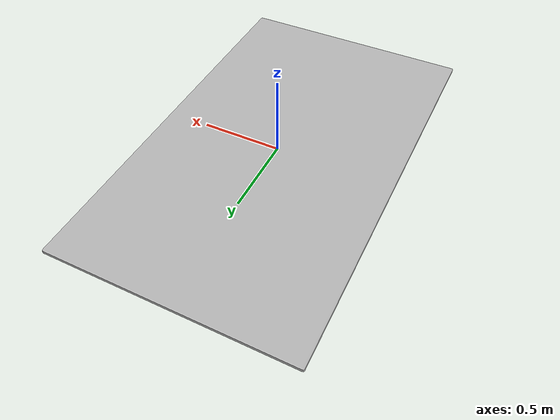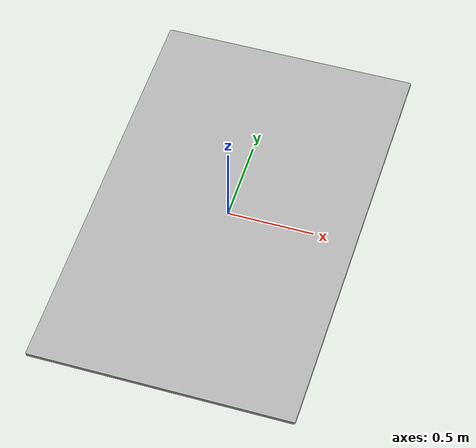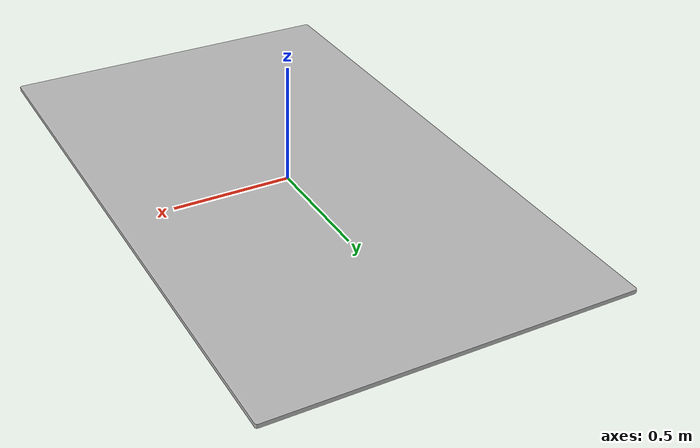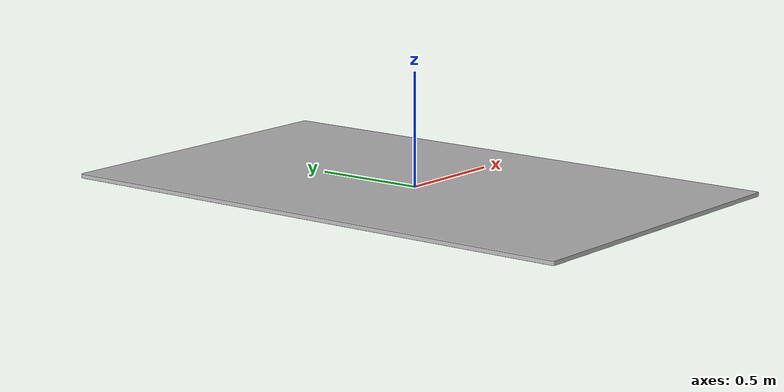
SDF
<?xml version='1.0'?>
<sdf version='1.4'>
  <model name='238'>
    <pose>0 0 0 0 0 0</pose>
    <static>true</static>
    <link name='link'>
      <collision name='collision'>
        <pose>0 0 0 0 0 0</pose>
        <geometry>
          <box>
            <size>1.5 2.5 0</size>
          </box>
        </geometry>
      </collision>
      <visual name='visual'>
        <pose>0 0 0 0 0 0</pose>
        <geometry>
          <mesh><uri>model://238/238.dae</uri></mesh>
        </geometry>
      </visual>
    </link>
  </model>
</sdf>
